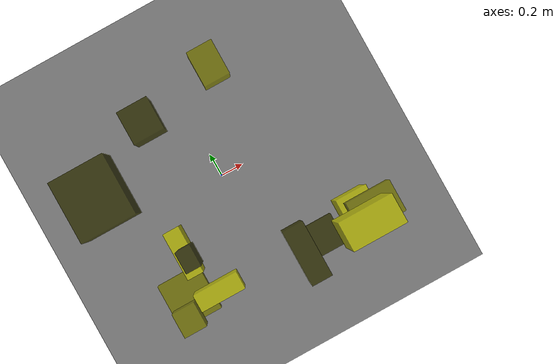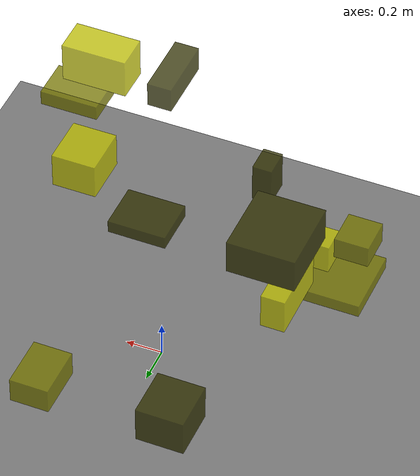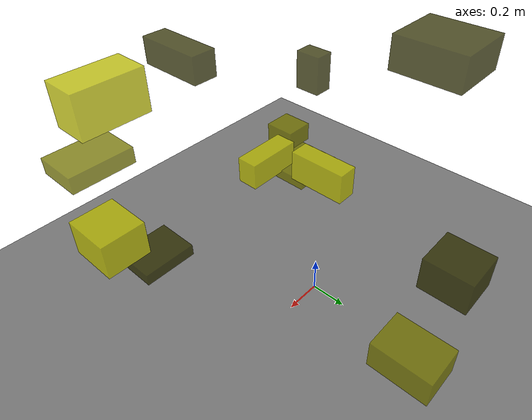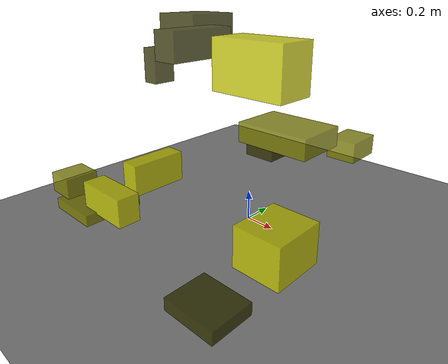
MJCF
<?xml version="1.0"?>
<mujoco model="obstacle_scene">
  <compiler angle="radian" coordinate="local"/>
  <option timestep="0.001" gravity="0 0 -9.81"/>

  <asset>
    <material name="obstacle_mat" rgba="0.8 0.8 0.0 0.8"/>
    <material name="ground_mat" rgba="0.5 0.5 0.5 1"/>
  </asset>

  <worldbody>
    <!-- Ground plane -->
    <geom name="ground" type="plane" size="3 3 0.1" material="ground_mat"/>

    <!-- Obstacles -->
    <body name="obstacle_0" pos="-0.701721 0.193035 1.253405">
      <geom name="obs_0" type="box" size="0.179299 0.200459 0.094900" rgba="0.2 0.2 0.0 0.8"/>
    </body>
    <body name="obstacle_1" pos="0.323414 0.760878 0.417727">
      <geom name="obs_1" type="box" size="0.105148 0.144363 0.071741" rgba="0.5 0.5 0.0 0.8"/>
    </body>
    <body name="obstacle_2" pos="0.765337 -0.728257 0.468528">
      <geom name="obs_2" type="box" size="0.124543 0.139435 0.103357" rgba="0.8 0.8 0.0 0.8"/>
    </body>
    <body name="obstacle_3" pos="-0.415642 -0.394505 1.071840">
      <geom name="obs_3" type="box" size="0.051636 0.072656 0.106754" rgba="0.2 0.2 0.0 0.8"/>
    </body>
    <body name="obstacle_4" pos="-0.699576 -0.735703 0.153658">
      <geom name="obs_4" type="box" size="0.183453 0.197534 0.035603" rgba="0.5 0.5 0.0 0.8"/>
    </body>
    <body name="obstacle_5" pos="-0.450442 -0.788848 0.269895">
      <geom name="obs_5" type="box" size="0.190081 0.072294 0.090690" rgba="0.8 0.8 0.0 0.8"/>
    </body>
    <body name="obstacle_6" pos="0.227190 -0.686884 1.280620">
      <geom name="obs_6" type="box" size="0.065773 0.177306 0.069560" rgba="0.2 0.2 0.0 0.8"/>
    </body>
    <body name="obstacle_7" pos="-0.748773 -0.861144 0.333570">
      <geom name="obs_7" type="box" size="0.095571 0.102879 0.063836" rgba="0.5 0.5 0.0 0.8"/>
    </body>
    <body name="obstacle_8" pos="-0.538447 -0.389384 0.319402">
      <geom name="obs_8" type="box" size="0.067111 0.197370 0.105111" rgba="0.8 0.8 0.0 0.8"/>
    </body>
    <body name="obstacle_9" pos="-0.333024 0.647397 0.315191">
      <geom name="obs_9" type="box" size="0.130149 0.139543 0.103581" rgba="0.2 0.2 0.0 0.8"/>
    </body>
    <body name="obstacle_10" pos="0.777421 -0.698049 0.969408">
      <geom name="obs_10" type="box" size="0.158696 0.112888 0.041646" rgba="0.5 0.5 0.0 0.8"/>
    </body>
    <body name="obstacle_11" pos="0.644621 -0.715680 1.226356">
      <geom name="obs_11" type="box" size="0.176978 0.095214 0.111948" rgba="0.8 0.8 0.0 0.8"/>
    </body>
    <body name="obstacle_12" pos="0.462798 -0.848924 0.043237">
      <geom name="obs_12" type="box" size="0.167434 0.136751 0.037513" rgba="0.2 0.2 0.0 0.8"/>
    </body>
  </worldbody>
</mujoco>
